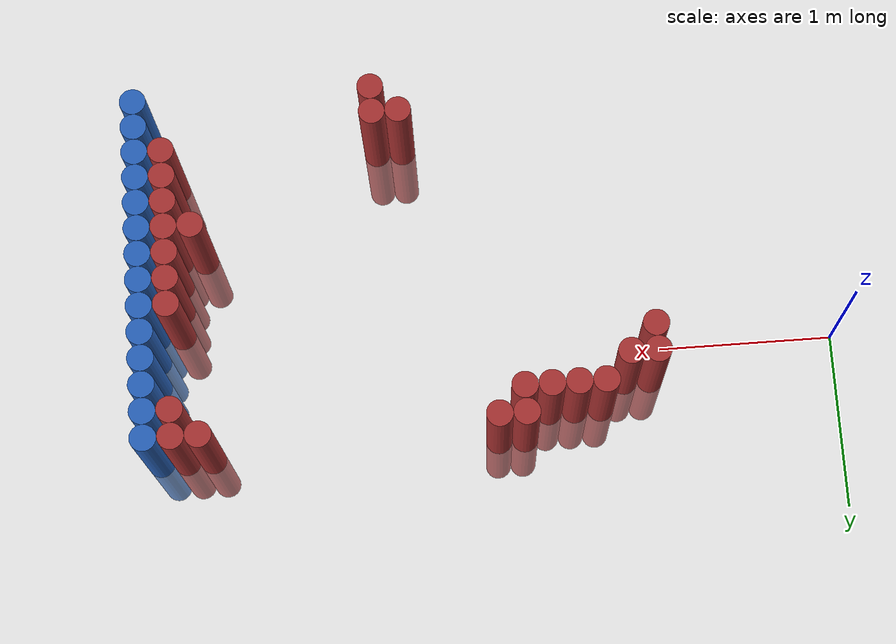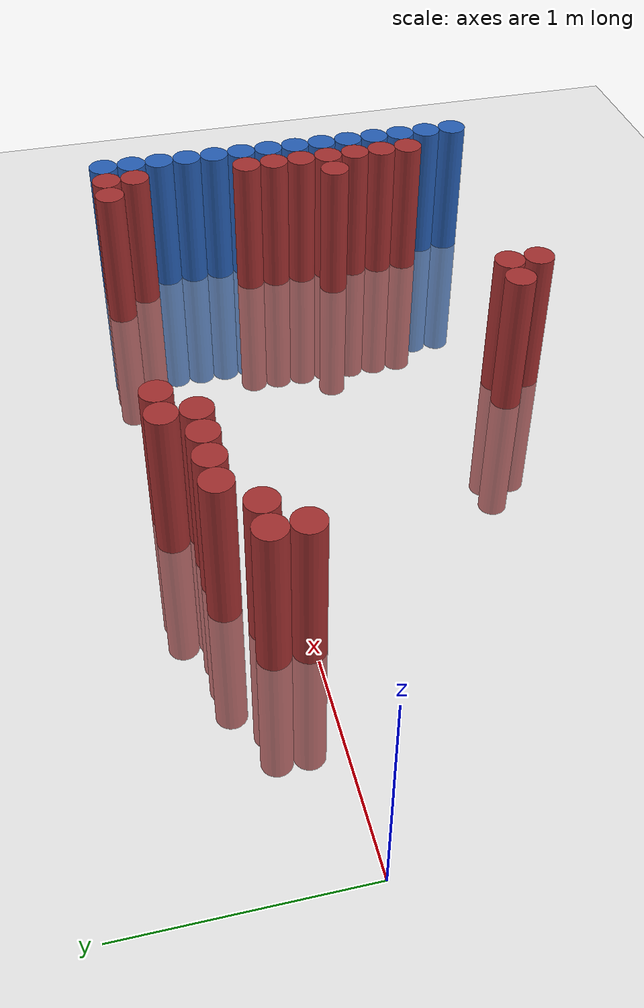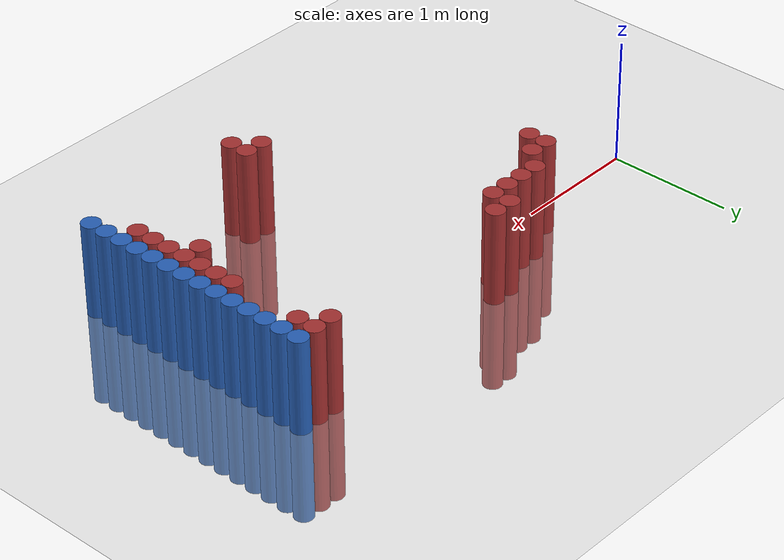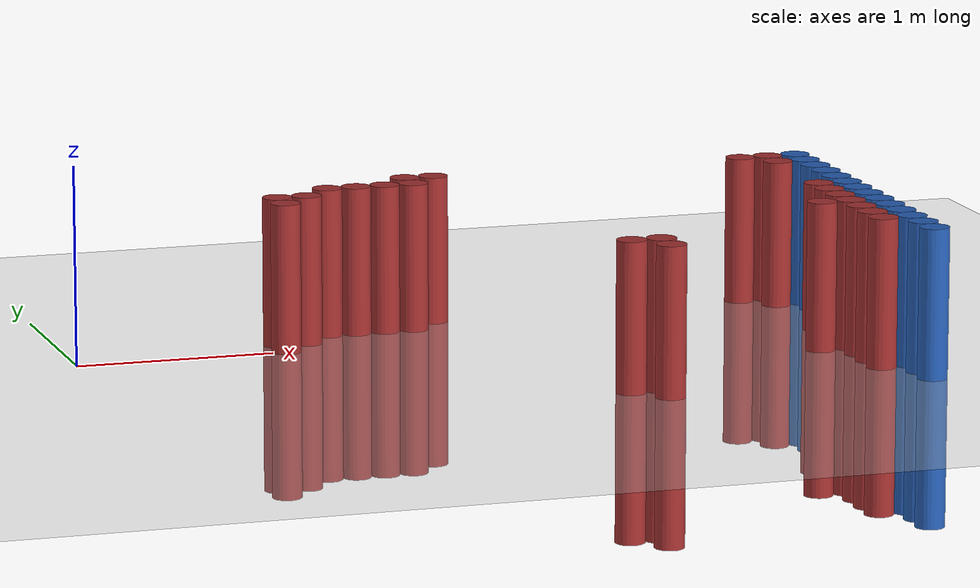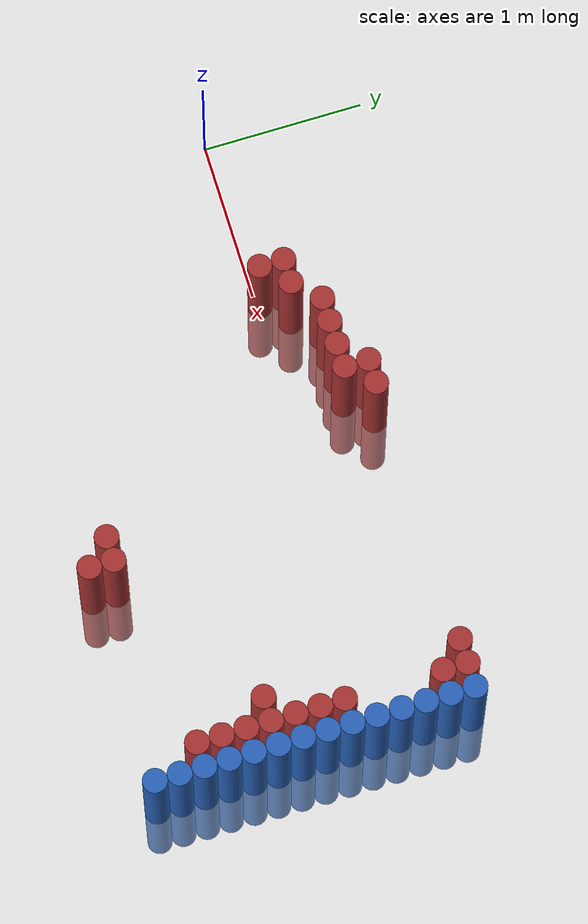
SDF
<sdf version="1.6">
 <world name="default">
  <model name="ground_plane">
   <static>1</static>
   <link name="link">
    <collision name="collision">
     <geometry><plane><normal>0 0 1</normal><size>100 100</size></plane></geometry>
     <surface><friction><ode><mu>100</mu><mu2>50</mu2></ode></friction></surface>
    </collision>
    <visual name="visual">
     <cast_shadows>0</cast_shadows>
     <geometry><plane><normal>0 0 1</normal><size>100 100</size></plane></geometry>
     <material>
      <script><uri>file://media/materials/scripts/gazebo.material</uri><name>Gazebo/Grey</name></script>
     </material>
    </visual>
   </link>
  </model>
  <model name="unit_cylinder_94">
   <static>1</static>
   <pose>3.925000 -1.475000 0.000000 0.000000 0.000000 0.000000</pose>
   <link name="link">
    <inertial>
     <mass>1</mass>
     <inertia><ixx>0.145833</ixx><ixy>0</ixy><ixz>0</ixz><iyy>0.145833</iyy><iyz>0</iyz><izz>0.125</izz></inertia>
    </inertial>
    <collision name="collision">
     <geometry><cylinder><radius>0.075000</radius><length>1.5</length></cylinder></geometry>
    </collision>
    <visual name="visual">
     <geometry><cylinder><radius>0.075000</radius><length>1.5</length></cylinder></geometry>
     <material>
      <ambient>0.152000 0.379000 0.720000 1</ambient>
      <diffuse>0.152000 0.379000 0.720000 1</diffuse>
     </material>
     <material>
      <script><name>Gazebo/Grey</name><uri>file://media/materials/scripts/gazebo.material</uri></script>
     </material>
    </visual>
   </link>
  </model>
  <model name="unit_cylinder_96">
   <static>1</static>
   <pose>3.925000 -1.325000 0.000000 0.000000 0.000000 0.000000</pose>
   <link name="link">
    <inertial>
     <mass>1</mass>
     <inertia><ixx>0.145833</ixx><ixy>0</ixy><ixz>0</ixz><iyy>0.145833</iyy><iyz>0</iyz><izz>0.125</izz></inertia>
    </inertial>
    <collision name="collision">
     <geometry><cylinder><radius>0.075000</radius><length>1.5</length></cylinder></geometry>
    </collision>
    <visual name="visual">
     <geometry><cylinder><radius>0.075000</radius><length>1.5</length></cylinder></geometry>
     <material>
      <ambient>0.152000 0.379000 0.720000 1</ambient>
      <diffuse>0.152000 0.379000 0.720000 1</diffuse>
     </material>
     <material>
      <script><name>Gazebo/Grey</name><uri>file://media/materials/scripts/gazebo.material</uri></script>
     </material>
    </visual>
   </link>
  </model>
  <model name="unit_cylinder_98">
   <static>1</static>
   <pose>3.925000 -1.175000 0.000000 0.000000 0.000000 0.000000</pose>
   <link name="link">
    <inertial>
     <mass>1</mass>
     <inertia><ixx>0.145833</ixx><ixy>0</ixy><ixz>0</ixz><iyy>0.145833</iyy><iyz>0</iyz><izz>0.125</izz></inertia>
    </inertial>
    <collision name="collision">
     <geometry><cylinder><radius>0.075000</radius><length>1.5</length></cylinder></geometry>
    </collision>
    <visual name="visual">
     <geometry><cylinder><radius>0.075000</radius><length>1.5</length></cylinder></geometry>
     <material>
      <ambient>0.152000 0.379000 0.720000 1</ambient>
      <diffuse>0.152000 0.379000 0.720000 1</diffuse>
     </material>
     <material>
      <script><name>Gazebo/Grey</name><uri>file://media/materials/scripts/gazebo.material</uri></script>
     </material>
    </visual>
   </link>
  </model>
  <model name="unit_cylinder_100">
   <static>1</static>
   <pose>3.925000 -1.025000 0.000000 0.000000 0.000000 0.000000</pose>
   <link name="link">
    <inertial>
     <mass>1</mass>
     <inertia><ixx>0.145833</ixx><ixy>0</ixy><ixz>0</ixz><iyy>0.145833</iyy><iyz>0</iyz><izz>0.125</izz></inertia>
    </inertial>
    <collision name="collision">
     <geometry><cylinder><radius>0.075000</radius><length>1.5</length></cylinder></geometry>
    </collision>
    <visual name="visual">
     <geometry><cylinder><radius>0.075000</radius><length>1.5</length></cylinder></geometry>
     <material>
      <ambient>0.152000 0.379000 0.720000 1</ambient>
      <diffuse>0.152000 0.379000 0.720000 1</diffuse>
     </material>
     <material>
      <script><name>Gazebo/Grey</name><uri>file://media/materials/scripts/gazebo.material</uri></script>
     </material>
    </visual>
   </link>
  </model>
  <model name="unit_cylinder_102">
   <static>1</static>
   <pose>3.925000 -0.875000 0.000000 0.000000 0.000000 0.000000</pose>
   <link name="link">
    <inertial>
     <mass>1</mass>
     <inertia><ixx>0.145833</ixx><ixy>0</ixy><ixz>0</ixz><iyy>0.145833</iyy><iyz>0</iyz><izz>0.125</izz></inertia>
    </inertial>
    <collision name="collision">
     <geometry><cylinder><radius>0.075000</radius><length>1.5</length></cylinder></geometry>
    </collision>
    <visual name="visual">
     <geometry><cylinder><radius>0.075000</radius><length>1.5</length></cylinder></geometry>
     <material>
      <ambient>0.152000 0.379000 0.720000 1</ambient>
      <diffuse>0.152000 0.379000 0.720000 1</diffuse>
     </material>
     <material>
      <script><name>Gazebo/Grey</name><uri>file://media/materials/scripts/gazebo.material</uri></script>
     </material>
    </visual>
   </link>
  </model>
  <model name="unit_cylinder_104">
   <static>1</static>
   <pose>3.925000 -0.725000 0.000000 0.000000 0.000000 0.000000</pose>
   <link name="link">
    <inertial>
     <mass>1</mass>
     <inertia><ixx>0.145833</ixx><ixy>0</ixy><ixz>0</ixz><iyy>0.145833</iyy><iyz>0</iyz><izz>0.125</izz></inertia>
    </inertial>
    <collision name="collision">
     <geometry><cylinder><radius>0.075000</radius><length>1.5</length></cylinder></geometry>
    </collision>
    <visual name="visual">
     <geometry><cylinder><radius>0.075000</radius><length>1.5</length></cylinder></geometry>
     <material>
      <ambient>0.152000 0.379000 0.720000 1</ambient>
      <diffuse>0.152000 0.379000 0.720000 1</diffuse>
     </material>
     <material>
      <script><name>Gazebo/Grey</name><uri>file://media/materials/scripts/gazebo.material</uri></script>
     </material>
    </visual>
   </link>
  </model>
  <model name="unit_cylinder_106">
   <static>1</static>
   <pose>3.925000 -0.575000 0.000000 0.000000 0.000000 0.000000</pose>
   <link name="link">
    <inertial>
     <mass>1</mass>
     <inertia><ixx>0.145833</ixx><ixy>0</ixy><ixz>0</ixz><iyy>0.145833</iyy><iyz>0</iyz><izz>0.125</izz></inertia>
    </inertial>
    <collision name="collision">
     <geometry><cylinder><radius>0.075000</radius><length>1.5</length></cylinder></geometry>
    </collision>
    <visual name="visual">
     <geometry><cylinder><radius>0.075000</radius><length>1.5</length></cylinder></geometry>
     <material>
      <ambient>0.152000 0.379000 0.720000 1</ambient>
      <diffuse>0.152000 0.379000 0.720000 1</diffuse>
     </material>
     <material>
      <script><name>Gazebo/Grey</name><uri>file://media/materials/scripts/gazebo.material</uri></script>
     </material>
    </visual>
   </link>
  </model>
  <model name="unit_cylinder_108">
   <static>1</static>
   <pose>3.925000 -0.425000 0.000000 0.000000 0.000000 0.000000</pose>
   <link name="link">
    <inertial>
     <mass>1</mass>
     <inertia><ixx>0.145833</ixx><ixy>0</ixy><ixz>0</ixz><iyy>0.145833</iyy><iyz>0</iyz><izz>0.125</izz></inertia>
    </inertial>
    <collision name="collision">
     <geometry><cylinder><radius>0.075000</radius><length>1.5</length></cylinder></geometry>
    </collision>
    <visual name="visual">
     <geometry><cylinder><radius>0.075000</radius><length>1.5</length></cylinder></geometry>
     <material>
      <ambient>0.152000 0.379000 0.720000 1</ambient>
      <diffuse>0.152000 0.379000 0.720000 1</diffuse>
     </material>
     <material>
      <script><name>Gazebo/Grey</name><uri>file://media/materials/scripts/gazebo.material</uri></script>
     </material>
    </visual>
   </link>
  </model>
  <model name="unit_cylinder_110">
   <static>1</static>
   <pose>3.925000 -0.275000 0.000000 0.000000 0.000000 0.000000</pose>
   <link name="link">
    <inertial>
     <mass>1</mass>
     <inertia><ixx>0.145833</ixx><ixy>0</ixy><ixz>0</ixz><iyy>0.145833</iyy><iyz>0</iyz><izz>0.125</izz></inertia>
    </inertial>
    <collision name="collision">
     <geometry><cylinder><radius>0.075000</radius><length>1.5</length></cylinder></geometry>
    </collision>
    <visual name="visual">
     <geometry><cylinder><radius>0.075000</radius><length>1.5</length></cylinder></geometry>
     <material>
      <ambient>0.152000 0.379000 0.720000 1</ambient>
      <diffuse>0.152000 0.379000 0.720000 1</diffuse>
     </material>
     <material>
      <script><name>Gazebo/Grey</name><uri>file://media/materials/scripts/gazebo.material</uri></script>
     </material>
    </visual>
   </link>
  </model>
  <model name="unit_cylinder_112">
   <static>1</static>
   <pose>3.925000 -0.125000 0.000000 0.000000 0.000000 0.000000</pose>
   <link name="link">
    <inertial>
     <mass>1</mass>
     <inertia><ixx>0.145833</ixx><ixy>0</ixy><ixz>0</ixz><iyy>0.145833</iyy><iyz>0</iyz><izz>0.125</izz></inertia>
    </inertial>
    <collision name="collision">
     <geometry><cylinder><radius>0.075000</radius><length>1.5</length></cylinder></geometry>
    </collision>
    <visual name="visual">
     <geometry><cylinder><radius>0.075000</radius><length>1.5</length></cylinder></geometry>
     <material>
      <ambient>0.152000 0.379000 0.720000 1</ambient>
      <diffuse>0.152000 0.379000 0.720000 1</diffuse>
     </material>
     <material>
      <script><name>Gazebo/Grey</name><uri>file://media/materials/scripts/gazebo.material</uri></script>
     </material>
    </visual>
   </link>
  </model>
  <model name="unit_cylinder_114">
   <static>1</static>
   <pose>3.925000 0.025000 0.000000 0.000000 0.000000 0.000000</pose>
   <link name="link">
    <inertial>
     <mass>1</mass>
     <inertia><ixx>0.145833</ixx><ixy>0</ixy><ixz>0</ixz><iyy>0.145833</iyy><iyz>0</iyz><izz>0.125</izz></inertia>
    </inertial>
    <collision name="collision">
     <geometry><cylinder><radius>0.075000</radius><length>1.5</length></cylinder></geometry>
    </collision>
    <visual name="visual">
     <geometry><cylinder><radius>0.075000</radius><length>1.5</length></cylinder></geometry>
     <material>
      <ambient>0.152000 0.379000 0.720000 1</ambient>
      <diffuse>0.152000 0.379000 0.720000 1</diffuse>
     </material>
     <material>
      <script><name>Gazebo/Grey</name><uri>file://media/materials/scripts/gazebo.material</uri></script>
     </material>
    </visual>
   </link>
  </model>
  <model name="unit_cylinder_116">
   <static>1</static>
   <pose>3.925000 0.175000 0.000000 0.000000 0.000000 0.000000</pose>
   <link name="link">
    <inertial>
     <mass>1</mass>
     <inertia><ixx>0.145833</ixx><ixy>0</ixy><ixz>0</ixz><iyy>0.145833</iyy><iyz>0</iyz><izz>0.125</izz></inertia>
    </inertial>
    <collision name="collision">
     <geometry><cylinder><radius>0.075000</radius><length>1.5</length></cylinder></geometry>
    </collision>
    <visual name="visual">
     <geometry><cylinder><radius>0.075000</radius><length>1.5</length></cylinder></geometry>
     <material>
      <ambient>0.152000 0.379000 0.720000 1</ambient>
      <diffuse>0.152000 0.379000 0.720000 1</diffuse>
     </material>
     <material>
      <script><name>Gazebo/Grey</name><uri>file://media/materials/scripts/gazebo.material</uri></script>
     </material>
    </visual>
   </link>
  </model>
  <model name="unit_cylinder_118">
   <static>1</static>
   <pose>3.925000 0.325000 0.000000 0.000000 0.000000 0.000000</pose>
   <link name="link">
    <inertial>
     <mass>1</mass>
     <inertia><ixx>0.145833</ixx><ixy>0</ixy><ixz>0</ixz><iyy>0.145833</iyy><iyz>0</iyz><izz>0.125</izz></inertia>
    </inertial>
    <collision name="collision">
     <geometry><cylinder><radius>0.075000</radius><length>1.5</length></cylinder></geometry>
    </collision>
    <visual name="visual">
     <geometry><cylinder><radius>0.075000</radius><length>1.5</length></cylinder></geometry>
     <material>
      <ambient>0.152000 0.379000 0.720000 1</ambient>
      <diffuse>0.152000 0.379000 0.720000 1</diffuse>
     </material>
     <material>
      <script><name>Gazebo/Grey</name><uri>file://media/materials/scripts/gazebo.material</uri></script>
     </material>
    </visual>
   </link>
  </model>
  <model name="unit_cylinder_120">
   <static>1</static>
   <pose>3.925000 0.475000 0.000000 0.000000 0.000000 0.000000</pose>
   <link name="link">
    <inertial>
     <mass>1</mass>
     <inertia><ixx>0.145833</ixx><ixy>0</ixy><ixz>0</ixz><iyy>0.145833</iyy><iyz>0</iyz><izz>0.125</izz></inertia>
    </inertial>
    <collision name="collision">
     <geometry><cylinder><radius>0.075000</radius><length>1.5</length></cylinder></geometry>
    </collision>
    <visual name="visual">
     <geometry><cylinder><radius>0.075000</radius><length>1.5</length></cylinder></geometry>
     <material>
      <ambient>0.152000 0.379000 0.720000 1</ambient>
      <diffuse>0.152000 0.379000 0.720000 1</diffuse>
     </material>
     <material>
      <script><name>Gazebo/Grey</name><uri>file://media/materials/scripts/gazebo.material</uri></script>
     </material>
    </visual>
   </link>
  </model>
  <model name="unit_cylinder_419">
   <static>1</static>
   <pose>1.075000 0.025000 0.000000 0.000000 0.000000 0.000000</pose>
   <link name="link">
    <inertial>
     <mass>1</mass>
     <inertia><ixx>0.145833</ixx><ixy>0</ixy><ixz>0</ixz><iyy>0.145833</iyy><iyz>0</iyz><izz>0.125</izz></inertia>
    </inertial>
    <collision name="collision">
     <geometry><cylinder><radius>0.075000</radius><length>1.5</length></cylinder></geometry>
    </collision>
    <visual name="visual">
     <geometry><cylinder><radius>0.075000</radius><length>1.5</length></cylinder></geometry>
     <material>
      <ambient>0.648000 0.192000 0.192000 1</ambient>
      <diffuse>0.648000 0.192000 0.192000 1</diffuse>
     </material>
     <material>
      <script><name>Gazebo/Grey</name><uri>file://media/materials/scripts/gazebo.material</uri></script>
     </material>
    </visual>
   </link>
  </model>
  <model name="unit_cylinder_420">
   <static>1</static>
   <pose>1.075000 0.175000 0.000000 0.000000 0.000000 0.000000</pose>
   <link name="link">
    <inertial>
     <mass>1</mass>
     <inertia><ixx>0.145833</ixx><ixy>0</ixy><ixz>0</ixz><iyy>0.145833</iyy><iyz>0</iyz><izz>0.125</izz></inertia>
    </inertial>
    <collision name="collision">
     <geometry><cylinder><radius>0.075000</radius><length>1.5</length></cylinder></geometry>
    </collision>
    <visual name="visual">
     <geometry><cylinder><radius>0.075000</radius><length>1.5</length></cylinder></geometry>
     <material>
      <ambient>0.648000 0.192000 0.192000 1</ambient>
      <diffuse>0.648000 0.192000 0.192000 1</diffuse>
     </material>
     <material>
      <script><name>Gazebo/Grey</name><uri>file://media/materials/scripts/gazebo.material</uri></script>
     </material>
    </visual>
   </link>
  </model>
  <model name="unit_cylinder_426">
   <static>1</static>
   <pose>1.225000 0.175000 0.000000 0.000000 0.000000 0.000000</pose>
   <link name="link">
    <inertial>
     <mass>1</mass>
     <inertia><ixx>0.145833</ixx><ixy>0</ixy><ixz>0</ixz><iyy>0.145833</iyy><iyz>0</iyz><izz>0.125</izz></inertia>
    </inertial>
    <collision name="collision">
     <geometry><cylinder><radius>0.075000</radius><length>1.5</length></cylinder></geometry>
    </collision>
    <visual name="visual">
     <geometry><cylinder><radius>0.075000</radius><length>1.5</length></cylinder></geometry>
     <material>
      <ambient>0.648000 0.192000 0.192000 1</ambient>
      <diffuse>0.648000 0.192000 0.192000 1</diffuse>
     </material>
     <material>
      <script><name>Gazebo/Grey</name><uri>file://media/materials/scripts/gazebo.material</uri></script>
     </material>
    </visual>
   </link>
  </model>
  <model name="unit_cylinder_432">
   <static>1</static>
   <pose>1.375000 0.325000 0.000000 0.000000 0.000000 0.000000</pose>
   <link name="link">
    <inertial>
     <mass>1</mass>
     <inertia><ixx>0.145833</ixx><ixy>0</ixy><ixz>0</ixz><iyy>0.145833</iyy><iyz>0</iyz><izz>0.125</izz></inertia>
    </inertial>
    <collision name="collision">
     <geometry><cylinder><radius>0.075000</radius><length>1.5</length></cylinder></geometry>
    </collision>
    <visual name="visual">
     <geometry><cylinder><radius>0.075000</radius><length>1.5</length></cylinder></geometry>
     <material>
      <ambient>0.648000 0.192000 0.192000 1</ambient>
      <diffuse>0.648000 0.192000 0.192000 1</diffuse>
     </material>
     <material>
      <script><name>Gazebo/Grey</name><uri>file://media/materials/scripts/gazebo.material</uri></script>
     </material>
    </visual>
   </link>
  </model>
  <model name="unit_cylinder_434">
   <static>1</static>
   <pose>1.525000 0.325000 0.000000 0.000000 0.000000 0.000000</pose>
   <link name="link">
    <inertial>
     <mass>1</mass>
     <inertia><ixx>0.145833</ixx><ixy>0</ixy><ixz>0</ixz><iyy>0.145833</iyy><iyz>0</iyz><izz>0.125</izz></inertia>
    </inertial>
    <collision name="collision">
     <geometry><cylinder><radius>0.075000</radius><length>1.5</length></cylinder></geometry>
    </collision>
    <visual name="visual">
     <geometry><cylinder><radius>0.075000</radius><length>1.5</length></cylinder></geometry>
     <material>
      <ambient>0.648000 0.192000 0.192000 1</ambient>
      <diffuse>0.648000 0.192000 0.192000 1</diffuse>
     </material>
     <material>
      <script><name>Gazebo/Grey</name><uri>file://media/materials/scripts/gazebo.material</uri></script>
     </material>
    </visual>
   </link>
  </model>
  <model name="unit_cylinder_435">
   <static>1</static>
   <pose>1.675000 0.325000 0.000000 0.000000 0.000000 0.000000</pose>
   <link name="link">
    <inertial>
     <mass>1</mass>
     <inertia><ixx>0.145833</ixx><ixy>0</ixy><ixz>0</ixz><iyy>0.145833</iyy><iyz>0</iyz><izz>0.125</izz></inertia>
    </inertial>
    <collision name="collision">
     <geometry><cylinder><radius>0.075000</radius><length>1.5</length></cylinder></geometry>
    </collision>
    <visual name="visual">
     <geometry><cylinder><radius>0.075000</radius><length>1.5</length></cylinder></geometry>
     <material>
      <ambient>0.648000 0.192000 0.192000 1</ambient>
      <diffuse>0.648000 0.192000 0.192000 1</diffuse>
     </material>
     <material>
      <script><name>Gazebo/Grey</name><uri>file://media/materials/scripts/gazebo.material</uri></script>
     </material>
    </visual>
   </link>
  </model>
  <model name="unit_cylinder_439">
   <static>1</static>
   <pose>1.825000 0.325000 0.000000 0.000000 0.000000 0.000000</pose>
   <link name="link">
    <inertial>
     <mass>1</mass>
     <inertia><ixx>0.145833</ixx><ixy>0</ixy><ixz>0</ixz><iyy>0.145833</iyy><iyz>0</iyz><izz>0.125</izz></inertia>
    </inertial>
    <collision name="collision">
     <geometry><cylinder><radius>0.075000</radius><length>1.5</length></cylinder></geometry>
    </collision>
    <visual name="visual">
     <geometry><cylinder><radius>0.075000</radius><length>1.5</length></cylinder></geometry>
     <material>
      <ambient>0.648000 0.192000 0.192000 1</ambient>
      <diffuse>0.648000 0.192000 0.192000 1</diffuse>
     </material>
     <material>
      <script><name>Gazebo/Grey</name><uri>file://media/materials/scripts/gazebo.material</uri></script>
     </material>
    </visual>
   </link>
  </model>
  <model name="unit_cylinder_440">
   <static>1</static>
   <pose>1.825000 0.475000 0.000000 0.000000 0.000000 0.000000</pose>
   <link name="link">
    <inertial>
     <mass>1</mass>
     <inertia><ixx>0.145833</ixx><ixy>0</ixy><ixz>0</ixz><iyy>0.145833</iyy><iyz>0</iyz><izz>0.125</izz></inertia>
    </inertial>
    <collision name="collision">
     <geometry><cylinder><radius>0.075000</radius><length>1.5</length></cylinder></geometry>
    </collision>
    <visual name="visual">
     <geometry><cylinder><radius>0.075000</radius><length>1.5</length></cylinder></geometry>
     <material>
      <ambient>0.648000 0.192000 0.192000 1</ambient>
      <diffuse>0.648000 0.192000 0.192000 1</diffuse>
     </material>
     <material>
      <script><name>Gazebo/Grey</name><uri>file://media/materials/scripts/gazebo.material</uri></script>
     </material>
    </visual>
   </link>
  </model>
  <model name="unit_cylinder_445">
   <static>1</static>
   <pose>1.975000 0.475000 0.000000 0.000000 0.000000 0.000000</pose>
   <link name="link">
    <inertial>
     <mass>1</mass>
     <inertia><ixx>0.145833</ixx><ixy>0</ixy><ixz>0</ixz><iyy>0.145833</iyy><iyz>0</iyz><izz>0.125</izz></inertia>
    </inertial>
    <collision name="collision">
     <geometry><cylinder><radius>0.075000</radius><length>1.5</length></cylinder></geometry>
    </collision>
    <visual name="visual">
     <geometry><cylinder><radius>0.075000</radius><length>1.5</length></cylinder></geometry>
     <material>
      <ambient>0.648000 0.192000 0.192000 1</ambient>
      <diffuse>0.648000 0.192000 0.192000 1</diffuse>
     </material>
     <material>
      <script><name>Gazebo/Grey</name><uri>file://media/materials/scripts/gazebo.material</uri></script>
     </material>
    </visual>
   </link>
  </model>
  <model name="unit_cylinder_450">
   <static>1</static>
   <pose>2.425000 -1.325000 0.000000 0.000000 0.000000 0.000000</pose>
   <link name="link">
    <inertial>
     <mass>1</mass>
     <inertia><ixx>0.145833</ixx><ixy>0</ixy><ixz>0</ixz><iyy>0.145833</iyy><iyz>0</iyz><izz>0.125</izz></inertia>
    </inertial>
    <collision name="collision">
     <geometry><cylinder><radius>0.075000</radius><length>1.5</length></cylinder></geometry>
    </collision>
    <visual name="visual">
     <geometry><cylinder><radius>0.075000</radius><length>1.5</length></cylinder></geometry>
     <material>
      <ambient>0.648000 0.192000 0.192000 1</ambient>
      <diffuse>0.648000 0.192000 0.192000 1</diffuse>
     </material>
     <material>
      <script><name>Gazebo/Grey</name><uri>file://media/materials/scripts/gazebo.material</uri></script>
     </material>
    </visual>
   </link>
  </model>
  <model name="unit_cylinder_454">
   <static>1</static>
   <pose>2.575000 -1.475000 0.000000 0.000000 0.000000 0.000000</pose>
   <link name="link">
    <inertial>
     <mass>1</mass>
     <inertia><ixx>0.145833</ixx><ixy>0</ixy><ixz>0</ixz><iyy>0.145833</iyy><iyz>0</iyz><izz>0.125</izz></inertia>
    </inertial>
    <collision name="collision">
     <geometry><cylinder><radius>0.075000</radius><length>1.5</length></cylinder></geometry>
    </collision>
    <visual name="visual">
     <geometry><cylinder><radius>0.075000</radius><length>1.5</length></cylinder></geometry>
     <material>
      <ambient>0.648000 0.192000 0.192000 1</ambient>
      <diffuse>0.648000 0.192000 0.192000 1</diffuse>
     </material>
     <material>
      <script><name>Gazebo/Grey</name><uri>file://media/materials/scripts/gazebo.material</uri></script>
     </material>
    </visual>
   </link>
  </model>
  <model name="unit_cylinder_455">
   <static>1</static>
   <pose>2.575000 -1.325000 0.000000 0.000000 0.000000 0.000000</pose>
   <link name="link">
    <inertial>
     <mass>1</mass>
     <inertia><ixx>0.145833</ixx><ixy>0</ixy><ixz>0</ixz><iyy>0.145833</iyy><iyz>0</iyz><izz>0.125</izz></inertia>
    </inertial>
    <collision name="collision">
     <geometry><cylinder><radius>0.075000</radius><length>1.5</length></cylinder></geometry>
    </collision>
    <visual name="visual">
     <geometry><cylinder><radius>0.075000</radius><length>1.5</length></cylinder></geometry>
     <material>
      <ambient>0.648000 0.192000 0.192000 1</ambient>
      <diffuse>0.648000 0.192000 0.192000 1</diffuse>
     </material>
     <material>
      <script><name>Gazebo/Grey</name><uri>file://media/materials/scripts/gazebo.material</uri></script>
     </material>
    </visual>
   </link>
  </model>
  <model name="unit_cylinder_485">
   <static>1</static>
   <pose>3.625000 -0.725000 0.000000 0.000000 0.000000 0.000000</pose>
   <link name="link">
    <inertial>
     <mass>1</mass>
     <inertia><ixx>0.145833</ixx><ixy>0</ixy><ixz>0</ixz><iyy>0.145833</iyy><iyz>0</iyz><izz>0.125</izz></inertia>
    </inertial>
    <collision name="collision">
     <geometry><cylinder><radius>0.075000</radius><length>1.5</length></cylinder></geometry>
    </collision>
    <visual name="visual">
     <geometry><cylinder><radius>0.075000</radius><length>1.5</length></cylinder></geometry>
     <material>
      <ambient>0.648000 0.192000 0.192000 1</ambient>
      <diffuse>0.648000 0.192000 0.192000 1</diffuse>
     </material>
     <material>
      <script><name>Gazebo/Grey</name><uri>file://media/materials/scripts/gazebo.material</uri></script>
     </material>
    </visual>
   </link>
  </model>
  <model name="unit_cylinder_486">
   <static>1</static>
   <pose>3.625000 0.475000 0.000000 0.000000 0.000000 0.000000</pose>
   <link name="link">
    <inertial>
     <mass>1</mass>
     <inertia><ixx>0.145833</ixx><ixy>0</ixy><ixz>0</ixz><iyy>0.145833</iyy><iyz>0</iyz><izz>0.125</izz></inertia>
    </inertial>
    <collision name="collision">
     <geometry><cylinder><radius>0.075000</radius><length>1.5</length></cylinder></geometry>
    </collision>
    <visual name="visual">
     <geometry><cylinder><radius>0.075000</radius><length>1.5</length></cylinder></geometry>
     <material>
      <ambient>0.648000 0.192000 0.192000 1</ambient>
      <diffuse>0.648000 0.192000 0.192000 1</diffuse>
     </material>
     <material>
      <script><name>Gazebo/Grey</name><uri>file://media/materials/scripts/gazebo.material</uri></script>
     </material>
    </visual>
   </link>
  </model>
  <model name="unit_cylinder_502">
   <static>1</static>
   <pose>3.775000 -1.175000 0.000000 0.000000 0.000000 0.000000</pose>
   <link name="link">
    <inertial>
     <mass>1</mass>
     <inertia><ixx>0.145833</ixx><ixy>0</ixy><ixz>0</ixz><iyy>0.145833</iyy><iyz>0</iyz><izz>0.125</izz></inertia>
    </inertial>
    <collision name="collision">
     <geometry><cylinder><radius>0.075000</radius><length>1.5</length></cylinder></geometry>
    </collision>
    <visual name="visual">
     <geometry><cylinder><radius>0.075000</radius><length>1.5</length></cylinder></geometry>
     <material>
      <ambient>0.648000 0.192000 0.192000 1</ambient>
      <diffuse>0.648000 0.192000 0.192000 1</diffuse>
     </material>
     <material>
      <script><name>Gazebo/Grey</name><uri>file://media/materials/scripts/gazebo.material</uri></script>
     </material>
    </visual>
   </link>
  </model>
  <model name="unit_cylinder_503">
   <static>1</static>
   <pose>3.775000 -1.025000 0.000000 0.000000 0.000000 0.000000</pose>
   <link name="link">
    <inertial>
     <mass>1</mass>
     <inertia><ixx>0.145833</ixx><ixy>0</ixy><ixz>0</ixz><iyy>0.145833</iyy><iyz>0</iyz><izz>0.125</izz></inertia>
    </inertial>
    <collision name="collision">
     <geometry><cylinder><radius>0.075000</radius><length>1.5</length></cylinder></geometry>
    </collision>
    <visual name="visual">
     <geometry><cylinder><radius>0.075000</radius><length>1.5</length></cylinder></geometry>
     <material>
      <ambient>0.648000 0.192000 0.192000 1</ambient>
      <diffuse>0.648000 0.192000 0.192000 1</diffuse>
     </material>
     <material>
      <script><name>Gazebo/Grey</name><uri>file://media/materials/scripts/gazebo.material</uri></script>
     </material>
    </visual>
   </link>
  </model>
  <model name="unit_cylinder_504">
   <static>1</static>
   <pose>3.775000 -0.875000 0.000000 0.000000 0.000000 0.000000</pose>
   <link name="link">
    <inertial>
     <mass>1</mass>
     <inertia><ixx>0.145833</ixx><ixy>0</ixy><ixz>0</ixz><iyy>0.145833</iyy><iyz>0</iyz><izz>0.125</izz></inertia>
    </inertial>
    <collision name="collision">
     <geometry><cylinder><radius>0.075000</radius><length>1.5</length></cylinder></geometry>
    </collision>
    <visual name="visual">
     <geometry><cylinder><radius>0.075000</radius><length>1.5</length></cylinder></geometry>
     <material>
      <ambient>0.648000 0.192000 0.192000 1</ambient>
      <diffuse>0.648000 0.192000 0.192000 1</diffuse>
     </material>
     <material>
      <script><name>Gazebo/Grey</name><uri>file://media/materials/scripts/gazebo.material</uri></script>
     </material>
    </visual>
   </link>
  </model>
  <model name="unit_cylinder_505">
   <static>1</static>
   <pose>3.775000 -0.725000 0.000000 0.000000 0.000000 0.000000</pose>
   <link name="link">
    <inertial>
     <mass>1</mass>
     <inertia><ixx>0.145833</ixx><ixy>0</ixy><ixz>0</ixz><iyy>0.145833</iyy><iyz>0</iyz><izz>0.125</izz></inertia>
    </inertial>
    <collision name="collision">
     <geometry><cylinder><radius>0.075000</radius><length>1.5</length></cylinder></geometry>
    </collision>
    <visual name="visual">
     <geometry><cylinder><radius>0.075000</radius><length>1.5</length></cylinder></geometry>
     <material>
      <ambient>0.648000 0.192000 0.192000 1</ambient>
      <diffuse>0.648000 0.192000 0.192000 1</diffuse>
     </material>
     <material>
      <script><name>Gazebo/Grey</name><uri>file://media/materials/scripts/gazebo.material</uri></script>
     </material>
    </visual>
   </link>
  </model>
  <model name="unit_cylinder_506">
   <static>1</static>
   <pose>3.775000 -0.575000 0.000000 0.000000 0.000000 0.000000</pose>
   <link name="link">
    <inertial>
     <mass>1</mass>
     <inertia><ixx>0.145833</ixx><ixy>0</ixy><ixz>0</ixz><iyy>0.145833</iyy><iyz>0</iyz><izz>0.125</izz></inertia>
    </inertial>
    <collision name="collision">
     <geometry><cylinder><radius>0.075000</radius><length>1.5</length></cylinder></geometry>
    </collision>
    <visual name="visual">
     <geometry><cylinder><radius>0.075000</radius><length>1.5</length></cylinder></geometry>
     <material>
      <ambient>0.648000 0.192000 0.192000 1</ambient>
      <diffuse>0.648000 0.192000 0.192000 1</diffuse>
     </material>
     <material>
      <script><name>Gazebo/Grey</name><uri>file://media/materials/scripts/gazebo.material</uri></script>
     </material>
    </visual>
   </link>
  </model>
  <model name="unit_cylinder_507">
   <static>1</static>
   <pose>3.775000 -0.425000 0.000000 0.000000 0.000000 0.000000</pose>
   <link name="link">
    <inertial>
     <mass>1</mass>
     <inertia><ixx>0.145833</ixx><ixy>0</ixy><ixz>0</ixz><iyy>0.145833</iyy><iyz>0</iyz><izz>0.125</izz></inertia>
    </inertial>
    <collision name="collision">
     <geometry><cylinder><radius>0.075000</radius><length>1.5</length></cylinder></geometry>
    </collision>
    <visual name="visual">
     <geometry><cylinder><radius>0.075000</radius><length>1.5</length></cylinder></geometry>
     <material>
      <ambient>0.648000 0.192000 0.192000 1</ambient>
      <diffuse>0.648000 0.192000 0.192000 1</diffuse>
     </material>
     <material>
      <script><name>Gazebo/Grey</name><uri>file://media/materials/scripts/gazebo.material</uri></script>
     </material>
    </visual>
   </link>
  </model>
  <model name="unit_cylinder_508">
   <static>1</static>
   <pose>3.775000 -0.275000 0.000000 0.000000 0.000000 0.000000</pose>
   <link name="link">
    <inertial>
     <mass>1</mass>
     <inertia><ixx>0.145833</ixx><ixy>0</ixy><ixz>0</ixz><iyy>0.145833</iyy><iyz>0</iyz><izz>0.125</izz></inertia>
    </inertial>
    <collision name="collision">
     <geometry><cylinder><radius>0.075000</radius><length>1.5</length></cylinder></geometry>
    </collision>
    <visual name="visual">
     <geometry><cylinder><radius>0.075000</radius><length>1.5</length></cylinder></geometry>
     <material>
      <ambient>0.648000 0.192000 0.192000 1</ambient>
      <diffuse>0.648000 0.192000 0.192000 1</diffuse>
     </material>
     <material>
      <script><name>Gazebo/Grey</name><uri>file://media/materials/scripts/gazebo.material</uri></script>
     </material>
    </visual>
   </link>
  </model>
  <model name="unit_cylinder_509">
   <static>1</static>
   <pose>3.775000 0.325000 0.000000 0.000000 0.000000 0.000000</pose>
   <link name="link">
    <inertial>
     <mass>1</mass>
     <inertia><ixx>0.145833</ixx><ixy>0</ixy><ixz>0</ixz><iyy>0.145833</iyy><iyz>0</iyz><izz>0.125</izz></inertia>
    </inertial>
    <collision name="collision">
     <geometry><cylinder><radius>0.075000</radius><length>1.5</length></cylinder></geometry>
    </collision>
    <visual name="visual">
     <geometry><cylinder><radius>0.075000</radius><length>1.5</length></cylinder></geometry>
     <material>
      <ambient>0.648000 0.192000 0.192000 1</ambient>
      <diffuse>0.648000 0.192000 0.192000 1</diffuse>
     </material>
     <material>
      <script><name>Gazebo/Grey</name><uri>file://media/materials/scripts/gazebo.material</uri></script>
     </material>
    </visual>
   </link>
  </model>
  <model name="unit_cylinder_510">
   <static>1</static>
   <pose>3.775000 0.475000 0.000000 0.000000 0.000000 0.000000</pose>
   <link name="link">
    <inertial>
     <mass>1</mass>
     <inertia><ixx>0.145833</ixx><ixy>0</ixy><ixz>0</ixz><iyy>0.145833</iyy><iyz>0</iyz><izz>0.125</izz></inertia>
    </inertial>
    <collision name="collision">
     <geometry><cylinder><radius>0.075000</radius><length>1.5</length></cylinder></geometry>
    </collision>
    <visual name="visual">
     <geometry><cylinder><radius>0.075000</radius><length>1.5</length></cylinder></geometry>
     <material>
      <ambient>0.648000 0.192000 0.192000 1</ambient>
      <diffuse>0.648000 0.192000 0.192000 1</diffuse>
     </material>
     <material>
      <script><name>Gazebo/Grey</name><uri>file://media/materials/scripts/gazebo.material</uri></script>
     </material>
    </visual>
   </link>
  </model>
  <model name="unit_cylinder_519">
   <static>1</static>
   <pose>3.925000 -1.475000 0.000000 0.000000 0.000000 0.000000</pose>
   <link name="link">
    <inertial>
     <mass>1</mass>
     <inertia><ixx>0.145833</ixx><ixy>0</ixy><ixz>0</ixz><iyy>0.145833</iyy><iyz>0</iyz><izz>0.125</izz></inertia>
    </inertial>
    <collision name="collision">
     <geometry><cylinder><radius>0.075000</radius><length>1.5</length></cylinder></geometry>
    </collision>
    <visual name="visual">
     <geometry><cylinder><radius>0.075000</radius><length>1.5</length></cylinder></geometry>
     <material>
      <ambient>0.152000 0.379000 0.720000 1</ambient>
      <diffuse>0.152000 0.379000 0.720000 1</diffuse>
     </material>
     <material>
      <script><name>Gazebo/Grey</name><uri>file://media/materials/scripts/gazebo.material</uri></script>
     </material>
    </visual>
   </link>
  </model>
  <model name="unit_cylinder_520">
   <static>1</static>
   <pose>3.925000 -1.325000 0.000000 0.000000 0.000000 0.000000</pose>
   <link name="link">
    <inertial>
     <mass>1</mass>
     <inertia><ixx>0.145833</ixx><ixy>0</ixy><ixz>0</ixz><iyy>0.145833</iyy><iyz>0</iyz><izz>0.125</izz></inertia>
    </inertial>
    <collision name="collision">
     <geometry><cylinder><radius>0.075000</radius><length>1.5</length></cylinder></geometry>
    </collision>
    <visual name="visual">
     <geometry><cylinder><radius>0.075000</radius><length>1.5</length></cylinder></geometry>
     <material>
      <ambient>0.152000 0.379000 0.720000 1</ambient>
      <diffuse>0.152000 0.379000 0.720000 1</diffuse>
     </material>
     <material>
      <script><name>Gazebo/Grey</name><uri>file://media/materials/scripts/gazebo.material</uri></script>
     </material>
    </visual>
   </link>
  </model>
  <model name="unit_cylinder_521">
   <static>1</static>
   <pose>3.925000 -1.175000 0.000000 0.000000 0.000000 0.000000</pose>
   <link name="link">
    <inertial>
     <mass>1</mass>
     <inertia><ixx>0.145833</ixx><ixy>0</ixy><ixz>0</ixz><iyy>0.145833</iyy><iyz>0</iyz><izz>0.125</izz></inertia>
    </inertial>
    <collision name="collision">
     <geometry><cylinder><radius>0.075000</radius><length>1.5</length></cylinder></geometry>
    </collision>
    <visual name="visual">
     <geometry><cylinder><radius>0.075000</radius><length>1.5</length></cylinder></geometry>
     <material>
      <ambient>0.152000 0.379000 0.720000 1</ambient>
      <diffuse>0.152000 0.379000 0.720000 1</diffuse>
     </material>
     <material>
      <script><name>Gazebo/Grey</name><uri>file://media/materials/scripts/gazebo.material</uri></script>
     </material>
    </visual>
   </link>
  </model>
  <model name="unit_cylinder_522">
   <static>1</static>
   <pose>3.925000 -1.025000 0.000000 0.000000 0.000000 0.000000</pose>
   <link name="link">
    <inertial>
     <mass>1</mass>
     <inertia><ixx>0.145833</ixx><ixy>0</ixy><ixz>0</ixz><iyy>0.145833</iyy><iyz>0</iyz><izz>0.125</izz></inertia>
    </inertial>
    <collision name="collision">
     <geometry><cylinder><radius>0.075000</radius><length>1.5</length></cylinder></geometry>
    </collision>
    <visual name="visual">
     <geometry><cylinder><radius>0.075000</radius><length>1.5</length></cylinder></geometry>
     <material>
      <ambient>0.152000 0.379000 0.720000 1</ambient>
      <diffuse>0.152000 0.379000 0.720000 1</diffuse>
     </material>
     <material>
      <script><name>Gazebo/Grey</name><uri>file://media/materials/scripts/gazebo.material</uri></script>
     </material>
    </visual>
   </link>
  </model>
  <model name="unit_cylinder_523">
   <static>1</static>
   <pose>3.925000 -0.875000 0.000000 0.000000 0.000000 0.000000</pose>
   <link name="link">
    <inertial>
     <mass>1</mass>
     <inertia><ixx>0.145833</ixx><ixy>0</ixy><ixz>0</ixz><iyy>0.145833</iyy><iyz>0</iyz><izz>0.125</izz></inertia>
    </inertial>
    <collision name="collision">
     <geometry><cylinder><radius>0.075000</radius><length>1.5</length></cylinder></geometry>
    </collision>
    <visual name="visual">
     <geometry><cylinder><radius>0.075000</radius><length>1.5</length></cylinder></geometry>
     <material>
      <ambient>0.152000 0.379000 0.720000 1</ambient>
      <diffuse>0.152000 0.379000 0.720000 1</diffuse>
     </material>
     <material>
      <script><name>Gazebo/Grey</name><uri>file://media/materials/scripts/gazebo.material</uri></script>
     </material>
    </visual>
   </link>
  </model>
  <model name="unit_cylinder_524">
   <static>1</static>
   <pose>3.925000 -0.725000 0.000000 0.000000 0.000000 0.000000</pose>
   <link name="link">
    <inertial>
     <mass>1</mass>
     <inertia><ixx>0.145833</ixx><ixy>0</ixy><ixz>0</ixz><iyy>0.145833</iyy><iyz>0</iyz><izz>0.125</izz></inertia>
    </inertial>
    <collision name="collision">
     <geometry><cylinder><radius>0.075000</radius><length>1.5</length></cylinder></geometry>
    </collision>
    <visual name="visual">
     <geometry><cylinder><radius>0.075000</radius><length>1.5</length></cylinder></geometry>
     <material>
      <ambient>0.152000 0.379000 0.720000 1</ambient>
      <diffuse>0.152000 0.379000 0.720000 1</diffuse>
     </material>
     <material>
      <script><name>Gazebo/Grey</name><uri>file://media/materials/scripts/gazebo.material</uri></script>
     </material>
    </visual>
   </link>
  </model>
  <model name="unit_cylinder_525">
   <static>1</static>
   <pose>3.925000 -0.575000 0.000000 0.000000 0.000000 0.000000</pose>
   <link name="link">
    <inertial>
     <mass>1</mass>
     <inertia><ixx>0.145833</ixx><ixy>0</ixy><ixz>0</ixz><iyy>0.145833</iyy><iyz>0</iyz><izz>0.125</izz></inertia>
    </inertial>
    <collision name="collision">
     <geometry><cylinder><radius>0.075000</radius><length>1.5</length></cylinder></geometry>
    </collision>
    <visual name="visual">
     <geometry><cylinder><radius>0.075000</radius><length>1.5</length></cylinder></geometry>
     <material>
      <ambient>0.152000 0.379000 0.720000 1</ambient>
      <diffuse>0.152000 0.379000 0.720000 1</diffuse>
     </material>
     <material>
      <script><name>Gazebo/Grey</name><uri>file://media/materials/scripts/gazebo.material</uri></script>
     </material>
    </visual>
   </link>
  </model>
  <model name="unit_cylinder_526">
   <static>1</static>
   <pose>3.925000 -0.425000 0.000000 0.000000 0.000000 0.000000</pose>
   <link name="link">
    <inertial>
     <mass>1</mass>
     <inertia><ixx>0.145833</ixx><ixy>0</ixy><ixz>0</ixz><iyy>0.145833</iyy><iyz>0</iyz><izz>0.125</izz></inertia>
    </inertial>
    <collision name="collision">
     <geometry><cylinder><radius>0.075000</radius><length>1.5</length></cylinder></geometry>
    </collision>
    <visual name="visual">
     <geometry><cylinder><radius>0.075000</radius><length>1.5</length></cylinder></geometry>
     <material>
      <ambient>0.152000 0.379000 0.720000 1</ambient>
      <diffuse>0.152000 0.379000 0.720000 1</diffuse>
     </material>
     <material>
      <script><name>Gazebo/Grey</name><uri>file://media/materials/scripts/gazebo.material</uri></script>
     </material>
    </visual>
   </link>
  </model>
  <model name="unit_cylinder_527">
   <static>1</static>
   <pose>3.925000 -0.275000 0.000000 0.000000 0.000000 0.000000</pose>
   <link name="link">
    <inertial>
     <mass>1</mass>
     <inertia><ixx>0.145833</ixx><ixy>0</ixy><ixz>0</ixz><iyy>0.145833</iyy><iyz>0</iyz><izz>0.125</izz></inertia>
    </inertial>
    <collision name="collision">
     <geometry><cylinder><radius>0.075000</radius><length>1.5</length></cylinder></geometry>
    </collision>
    <visual name="visual">
     <geometry><cylinder><radius>0.075000</radius><length>1.5</length></cylinder></geometry>
     <material>
      <ambient>0.152000 0.379000 0.720000 1</ambient>
      <diffuse>0.152000 0.379000 0.720000 1</diffuse>
     </material>
     <material>
      <script><name>Gazebo/Grey</name><uri>file://media/materials/scripts/gazebo.material</uri></script>
     </material>
    </visual>
   </link>
  </model>
  <model name="unit_cylinder_528">
   <static>1</static>
   <pose>3.925000 -0.125000 0.000000 0.000000 0.000000 0.000000</pose>
   <link name="link">
    <inertial>
     <mass>1</mass>
     <inertia><ixx>0.145833</ixx><ixy>0</ixy><ixz>0</ixz><iyy>0.145833</iyy><iyz>0</iyz><izz>0.125</izz></inertia>
    </inertial>
    <collision name="collision">
     <geometry><cylinder><radius>0.075000</radius><length>1.5</length></cylinder></geometry>
    </collision>
    <visual name="visual">
     <geometry><cylinder><radius>0.075000</radius><length>1.5</length></cylinder></geometry>
     <material>
      <ambient>0.152000 0.379000 0.720000 1</ambient>
      <diffuse>0.152000 0.379000 0.720000 1</diffuse>
     </material>
     <material>
      <script><name>Gazebo/Grey</name><uri>file://media/materials/scripts/gazebo.material</uri></script>
     </material>
    </visual>
   </link>
  </model>
  <model name="unit_cylinder_529">
   <static>1</static>
   <pose>3.925000 0.025000 0.000000 0.000000 0.000000 0.000000</pose>
   <link name="link">
    <inertial>
     <mass>1</mass>
     <inertia><ixx>0.145833</ixx><ixy>0</ixy><ixz>0</ixz><iyy>0.145833</iyy><iyz>0</iyz><izz>0.125</izz></inertia>
    </inertial>
    <collision name="collision">
     <geometry><cylinder><radius>0.075000</radius><length>1.5</length></cylinder></geometry>
    </collision>
    <visual name="visual">
     <geometry><cylinder><radius>0.075000</radius><length>1.5</length></cylinder></geometry>
     <material>
      <ambient>0.152000 0.379000 0.720000 1</ambient>
      <diffuse>0.152000 0.379000 0.720000 1</diffuse>
     </material>
     <material>
      <script><name>Gazebo/Grey</name><uri>file://media/materials/scripts/gazebo.material</uri></script>
     </material>
    </visual>
   </link>
  </model>
  <model name="unit_cylinder_530">
   <static>1</static>
   <pose>3.925000 0.175000 0.000000 0.000000 0.000000 0.000000</pose>
   <link name="link">
    <inertial>
     <mass>1</mass>
     <inertia><ixx>0.145833</ixx><ixy>0</ixy><ixz>0</ixz><iyy>0.145833</iyy><iyz>0</iyz><izz>0.125</izz></inertia>
    </inertial>
    <collision name="collision">
     <geometry><cylinder><radius>0.075000</radius><length>1.5</length></cylinder></geometry>
    </collision>
    <visual name="visual">
     <geometry><cylinder><radius>0.075000</radius><length>1.5</length></cylinder></geometry>
     <material>
      <ambient>0.152000 0.379000 0.720000 1</ambient>
      <diffuse>0.152000 0.379000 0.720000 1</diffuse>
     </material>
     <material>
      <script><name>Gazebo/Grey</name><uri>file://media/materials/scripts/gazebo.material</uri></script>
     </material>
    </visual>
   </link>
  </model>
  <model name="unit_cylinder_531">
   <static>1</static>
   <pose>3.925000 0.325000 0.000000 0.000000 0.000000 0.000000</pose>
   <link name="link">
    <inertial>
     <mass>1</mass>
     <inertia><ixx>0.145833</ixx><ixy>0</ixy><ixz>0</ixz><iyy>0.145833</iyy><iyz>0</iyz><izz>0.125</izz></inertia>
    </inertial>
    <collision name="collision">
     <geometry><cylinder><radius>0.075000</radius><length>1.5</length></cylinder></geometry>
    </collision>
    <visual name="visual">
     <geometry><cylinder><radius>0.075000</radius><length>1.5</length></cylinder></geometry>
     <material>
      <ambient>0.152000 0.379000 0.720000 1</ambient>
      <diffuse>0.152000 0.379000 0.720000 1</diffuse>
     </material>
     <material>
      <script><name>Gazebo/Grey</name><uri>file://media/materials/scripts/gazebo.material</uri></script>
     </material>
    </visual>
   </link>
  </model>
  <model name="unit_cylinder_532">
   <static>1</static>
   <pose>3.925000 0.475000 0.000000 0.000000 0.000000 0.000000</pose>
   <link name="link">
    <inertial>
     <mass>1</mass>
     <inertia><ixx>0.145833</ixx><ixy>0</ixy><ixz>0</ixz><iyy>0.145833</iyy><iyz>0</iyz><izz>0.125</izz></inertia>
    </inertial>
    <collision name="collision">
     <geometry><cylinder><radius>0.075000</radius><length>1.5</length></cylinder></geometry>
    </collision>
    <visual name="visual">
     <geometry><cylinder><radius>0.075000</radius><length>1.5</length></cylinder></geometry>
     <material>
      <ambient>0.152000 0.379000 0.720000 1</ambient>
      <diffuse>0.152000 0.379000 0.720000 1</diffuse>
     </material>
     <material>
      <script><name>Gazebo/Grey</name><uri>file://media/materials/scripts/gazebo.material</uri></script>
     </material>
    </visual>
   </link>
  </model>
 </world>
</sdf>
